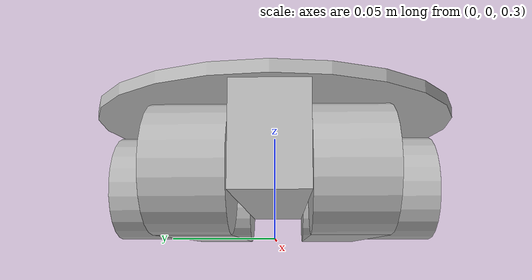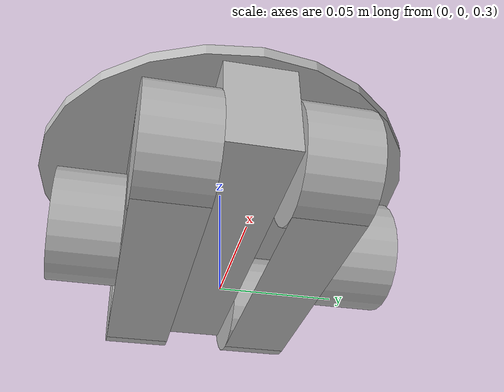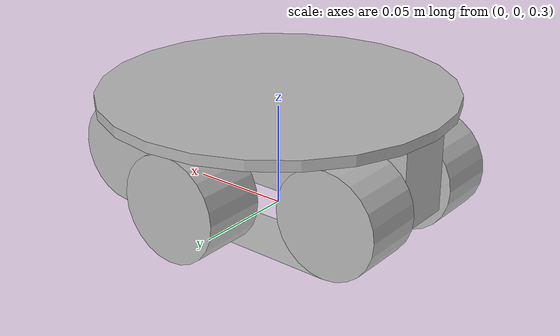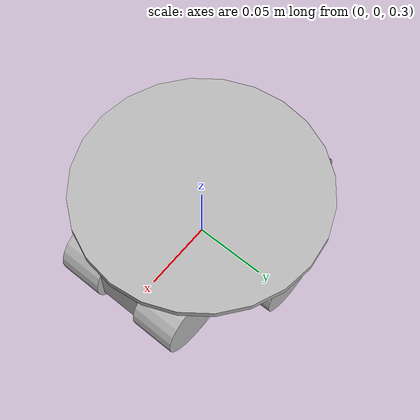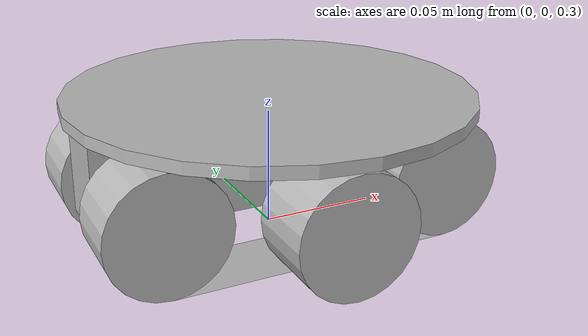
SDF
<?xml version='1.0'?>
<sdf version='1.6'>
		<model name="marXbotBase">
			<self_collide>true</self_collide>
			<pose>0.0 0.0 0.3 0.0 0.0 0.0</pose>
			<!-- Start of parts of the pmodel marXbotBase -->
				<!-- Start of declarations for part "marXbotBase::LTreel" -->
					<!-- Start of parts of part "marXbotBase::LTreel" -->
					<!-- End of parts of part "marXbotBase::LTreel" -->

					<!-- Start of links of part "marXbotBase::LTreel" -->
					<!-- link full name is marXbotBase::LTreel::Wheel -->
					<link name="1-Wheel">
							<pose>0.0 0.059999998530114576 0.024997220650460422 -1.5709353129016326 -0.0 0.0</pose>
							<inertial>
								<pose>0.0 0.0 0.0 0.0 0.0 0.0</pose>
								<inertia>
									<ixx>1.0</ixx>
									<ixy>0.0</ixy>
									<ixz>0.0</ixz>
									<iyy>1.0</iyy>
									<iyz>0.0</iyz>
									<izz>1.0</izz>
								</inertia>
								<mass>1.0</mass>
							</inertial>
							<!-- body full name is marXbotBase::LTreel::Wheel::Wheel -->
							<collision name="1--Wheel">
								<laser_retro>0.0</laser_retro>
								<pose>0.0 0.0 0.0 0.0 0.0 0.0</pose>
								<geometry>
									<cylinder>
										<radius>0.025025001541152614</radius>
										<length>0.029999999329447746</length>
									</cylinder>
								</geometry>
								<surface>
									<bounce>
										<restitution_coefficient>0.0</restitution_coefficient>
										<threshold>100000.0</threshold>
									</bounce>
									<friction>
										<ode>
											<mu>1.0</mu>
											<mu2>1.0</mu2>
											<fdir1>0.0 0.0 0.0</fdir1>
											<slip1>0.0</slip1>
											<slip2>0.0</slip2>
										</ode>
										<torsional>
											<coefficient>1.0</coefficient>
											<surface_radius>0.0</surface_radius>
										</torsional>
									</friction>
								</surface>
							</collision>
							<visual name="1--Wheel">
								<laser_retro>0.0</laser_retro>
								<pose>0.0 0.0 0.0 0.0 0.0 0.0</pose>
								<geometry>
									<cylinder>
										<radius>0.025025001541152614</radius>
										<length>0.029999999329447746</length>
									</cylinder>
								</geometry>
								<surface>
									<bounce>
										<restitution_coefficient>0.0</restitution_coefficient>
										<threshold>100000.0</threshold>
									</bounce>
									<friction>
										<ode>
											<mu>1.0</mu>
											<mu2>1.0</mu2>
											<fdir1>0.0 0.0 0.0</fdir1>
											<slip1>0.0</slip1>
											<slip2>0.0</slip2>
										</ode>
										<torsional>
											<coefficient>1.0</coefficient>
											<surface_radius>0.0</surface_radius>
										</torsional>
									</friction>
								</surface>
							</visual>
					</link>
					<!-- link full name is marXbotBase::LTreel::Track -->
					<link name="2-Track">
							<pose>0.0 0.029999999329447746 0.02500000037252903 3.1414999961853027 0.0 0.0</pose>
							<inertial>
								<pose>0.0 0.0 0.0 0.0 0.0 0.0</pose>
								<inertia>
									<ixx>1.0</ixx>
									<ixy>0.0</ixy>
									<ixz>0.0</ixz>
									<iyy>1.0</iyy>
									<iyz>0.0</iyz>
									<izz>1.0</izz>
								</inertia>
								<mass>1.0</mass>
							</inertial>
							<!-- body full name is marXbotBase::LTreel::Track::Top -->
							<collision name="2--Top">
								<laser_retro>0.0</laser_retro>
								<pose>0.0 0.0 0.02500000037252903 0.0 0.0 0.0</pose>
								<geometry>
									<box>
										<size>0.12000000104308128 0.029999999329447746 0</size>
									</box>
								</geometry>
								<surface>
									<bounce>
										<restitution_coefficient>0.0</restitution_coefficient>
										<threshold>100000.0</threshold>
									</bounce>
									<friction>
										<ode>
											<mu>1.0</mu>
											<mu2>1.0</mu2>
											<fdir1>0.0 0.0 0.0</fdir1>
											<slip1>0.0</slip1>
											<slip2>0.0</slip2>
										</ode>
										<torsional>
											<coefficient>1.0</coefficient>
											<surface_radius>0.0</surface_radius>
										</torsional>
									</friction>
								</surface>
							</collision>
							<visual name="2--Top">
								<laser_retro>0.0</laser_retro>
								<pose>0.0 0.0 0.02500000037252903 0.0 0.0 0.0</pose>
								<geometry>
									<box>
										<size>0.12000000104308128 0.029999999329447746 0</size>
									</box>
								</geometry>
								<surface>
									<bounce>
										<restitution_coefficient>0.0</restitution_coefficient>
										<threshold>100000.0</threshold>
									</bounce>
									<friction>
										<ode>
											<mu>1.0</mu>
											<mu2>1.0</mu2>
											<fdir1>0.0 0.0 0.0</fdir1>
											<slip1>0.0</slip1>
											<slip2>0.0</slip2>
										</ode>
										<torsional>
											<coefficient>1.0</coefficient>
											<surface_radius>0.0</surface_radius>
										</torsional>
									</friction>
								</surface>
							</visual>
							<!-- body full name is marXbotBase::LTreel::Track::Bottom -->
							<collision name="3--Bottom">
								<laser_retro>0.0</laser_retro>
								<pose>0.0 0.0 -0.02500000037252903 0.0 0.0 0.0</pose>
								<geometry>
									<box>
										<size>0.12000000104308128 0.029999999329447746 0</size>
									</box>
								</geometry>
								<surface>
									<bounce>
										<restitution_coefficient>0.0</restitution_coefficient>
										<threshold>100000.0</threshold>
									</bounce>
									<friction>
										<ode>
											<mu>1.0</mu>
											<mu2>1.0</mu2>
											<fdir1>0.0 0.0 0.0</fdir1>
											<slip1>0.0</slip1>
											<slip2>0.0</slip2>
										</ode>
										<torsional>
											<coefficient>1.0</coefficient>
											<surface_radius>0.0</surface_radius>
										</torsional>
									</friction>
								</surface>
							</collision>
							<visual name="3--Bottom">
								<laser_retro>0.0</laser_retro>
								<pose>0.0 0.0 -0.02500000037252903 0.0 0.0 0.0</pose>
								<geometry>
									<box>
										<size>0.12000000104308128 0.029999999329447746 0</size>
									</box>
								</geometry>
								<surface>
									<bounce>
										<restitution_coefficient>0.0</restitution_coefficient>
										<threshold>100000.0</threshold>
									</bounce>
									<friction>
										<ode>
											<mu>1.0</mu>
											<mu2>1.0</mu2>
											<fdir1>0.0 0.0 0.0</fdir1>
											<slip1>0.0</slip1>
											<slip2>0.0</slip2>
										</ode>
										<torsional>
											<coefficient>1.0</coefficient>
											<surface_radius>0.0</surface_radius>
										</torsional>
									</friction>
								</surface>
							</visual>
							<!-- body full name is marXbotBase::LTreel::Track::FrontWheel -->
							<collision name="4--FrontWheel">
								<laser_retro>0.0</laser_retro>
								<pose>-0.06000000052154064 0.0 0.0 1.5707499980926514 0.0 0.0</pose>
								<geometry>
									<cylinder>
										<radius>0.02500000037252903</radius>
										<length>0.029999999329447746</length>
									</cylinder>
								</geometry>
								<surface>
									<bounce>
										<restitution_coefficient>0.0</restitution_coefficient>
										<threshold>100000.0</threshold>
									</bounce>
									<friction>
										<ode>
											<mu>1.0</mu>
											<mu2>1.0</mu2>
											<fdir1>0.0 0.0 0.0</fdir1>
											<slip1>0.0</slip1>
											<slip2>0.0</slip2>
										</ode>
										<torsional>
											<coefficient>1.0</coefficient>
											<surface_radius>0.0</surface_radius>
										</torsional>
									</friction>
								</surface>
							</collision>
							<visual name="4--FrontWheel">
								<laser_retro>0.0</laser_retro>
								<pose>-0.06000000052154064 0.0 0.0 1.5707499980926514 0.0 0.0</pose>
								<geometry>
									<cylinder>
										<radius>0.02500000037252903</radius>
										<length>0.029999999329447746</length>
									</cylinder>
								</geometry>
								<surface>
									<bounce>
										<restitution_coefficient>0.0</restitution_coefficient>
										<threshold>100000.0</threshold>
									</bounce>
									<friction>
										<ode>
											<mu>1.0</mu>
											<mu2>1.0</mu2>
											<fdir1>0.0 0.0 0.0</fdir1>
											<slip1>0.0</slip1>
											<slip2>0.0</slip2>
										</ode>
										<torsional>
											<coefficient>1.0</coefficient>
											<surface_radius>0.0</surface_radius>
										</torsional>
									</friction>
								</surface>
							</visual>
							<!-- body full name is marXbotBase::LTreel::Track::BackWheel -->
							<collision name="5--BackWheel">
								<laser_retro>0.0</laser_retro>
								<pose>0.06000000052154064 0.0 0.0 1.5707499980926514 0.0 0.0</pose>
								<geometry>
									<cylinder>
										<radius>0.02500000037252903</radius>
										<length>0.029999999329447746</length>
									</cylinder>
								</geometry>
								<surface>
									<bounce>
										<restitution_coefficient>0.0</restitution_coefficient>
										<threshold>100000.0</threshold>
									</bounce>
									<friction>
										<ode>
											<mu>1.0</mu>
											<mu2>1.0</mu2>
											<fdir1>0.0 0.0 0.0</fdir1>
											<slip1>0.0</slip1>
											<slip2>0.0</slip2>
										</ode>
										<torsional>
											<coefficient>1.0</coefficient>
											<surface_radius>0.0</surface_radius>
										</torsional>
									</friction>
								</surface>
							</collision>
							<visual name="5--BackWheel">
								<laser_retro>0.0</laser_retro>
								<pose>0.06000000052154064 0.0 0.0 1.5707499980926514 0.0 0.0</pose>
								<geometry>
									<cylinder>
										<radius>0.02500000037252903</radius>
										<length>0.029999999329447746</length>
									</cylinder>
								</geometry>
								<surface>
									<bounce>
										<restitution_coefficient>0.0</restitution_coefficient>
										<threshold>100000.0</threshold>
									</bounce>
									<friction>
										<ode>
											<mu>1.0</mu>
											<mu2>1.0</mu2>
											<fdir1>0.0 0.0 0.0</fdir1>
											<slip1>0.0</slip1>
											<slip2>0.0</slip2>
										</ode>
										<torsional>
											<coefficient>1.0</coefficient>
											<surface_radius>0.0</surface_radius>
										</torsional>
									</friction>
								</surface>
							</visual>
					</link>
					<!-- End of links of part "marXbotBase::LTreel" -->

					<!-- Start of joints of part "marXbotBase::LTreel" -->
					<!-- End of joints of part "marXbotBase::LTreel" -->

					<!-- Start of fixed connections of part "marXbotBase::LTreel" -->

					<!-- End of fixed connections of part "marXbotBase::LTreel" -->
				<!-- End of declarations for part "marXbotBase::LTreel" -->
				<!-- Start of declarations for part "marXbotBase::RTreel" -->
					<!-- Start of parts of part "marXbotBase::RTreel" -->
					<!-- End of parts of part "marXbotBase::RTreel" -->

					<!-- Start of links of part "marXbotBase::RTreel" -->
					<!-- link full name is marXbotBase::RTreel::Wheel -->
					<link name="3-Wheel">
							<pose>0.0 -0.05999999865889549 0.02500000037252903 1.5707499980926514 -0.0 0.0</pose>
							<inertial>
								<pose>0.0 0.0 0.0 0.0 0.0 0.0</pose>
								<inertia>
									<ixx>1.0</ixx>
									<ixy>0.0</ixy>
									<ixz>0.0</ixz>
									<iyy>1.0</iyy>
									<iyz>0.0</iyz>
									<izz>1.0</izz>
								</inertia>
								<mass>1.0</mass>
							</inertial>
							<!-- body full name is marXbotBase::RTreel::Wheel::Wheel -->
							<collision name="6--Wheel">
								<laser_retro>0.0</laser_retro>
								<pose>0.0 0.0 0.0 0.0 0.0 0.0</pose>
								<geometry>
									<cylinder>
										<radius>0.025025001541152614</radius>
										<length>0.029999999329447746</length>
									</cylinder>
								</geometry>
								<surface>
									<bounce>
										<restitution_coefficient>0.0</restitution_coefficient>
										<threshold>100000.0</threshold>
									</bounce>
									<friction>
										<ode>
											<mu>1.0</mu>
											<mu2>1.0</mu2>
											<fdir1>0.0 0.0 0.0</fdir1>
											<slip1>0.0</slip1>
											<slip2>0.0</slip2>
										</ode>
										<torsional>
											<coefficient>1.0</coefficient>
											<surface_radius>0.0</surface_radius>
										</torsional>
									</friction>
								</surface>
							</collision>
							<visual name="6--Wheel">
								<laser_retro>0.0</laser_retro>
								<pose>0.0 0.0 0.0 0.0 0.0 0.0</pose>
								<geometry>
									<cylinder>
										<radius>0.025025001541152614</radius>
										<length>0.029999999329447746</length>
									</cylinder>
								</geometry>
								<surface>
									<bounce>
										<restitution_coefficient>0.0</restitution_coefficient>
										<threshold>100000.0</threshold>
									</bounce>
									<friction>
										<ode>
											<mu>1.0</mu>
											<mu2>1.0</mu2>
											<fdir1>0.0 0.0 0.0</fdir1>
											<slip1>0.0</slip1>
											<slip2>0.0</slip2>
										</ode>
										<torsional>
											<coefficient>1.0</coefficient>
											<surface_radius>0.0</surface_radius>
										</torsional>
									</friction>
								</surface>
							</visual>
					</link>
					<!-- link full name is marXbotBase::RTreel::Track -->
					<link name="4-Track">
							<pose>0.0 -0.029999999329447746 0.02500000037252903 0.0 0.0 0.0</pose>
							<inertial>
								<pose>0.0 0.0 0.0 0.0 0.0 0.0</pose>
								<inertia>
									<ixx>1.0</ixx>
									<ixy>0.0</ixy>
									<ixz>0.0</ixz>
									<iyy>1.0</iyy>
									<iyz>0.0</iyz>
									<izz>1.0</izz>
								</inertia>
								<mass>1.0</mass>
							</inertial>
							<!-- body full name is marXbotBase::RTreel::Track::Top -->
							<collision name="7--Top">
								<laser_retro>0.0</laser_retro>
								<pose>0.0 0.0 0.02500000037252903 0.0 0.0 0.0</pose>
								<geometry>
									<box>
										<size>0.12000000104308128 0.029999999329447746 0</size>
									</box>
								</geometry>
								<surface>
									<bounce>
										<restitution_coefficient>0.0</restitution_coefficient>
										<threshold>100000.0</threshold>
									</bounce>
									<friction>
										<ode>
											<mu>1.0</mu>
											<mu2>1.0</mu2>
											<fdir1>0.0 0.0 0.0</fdir1>
											<slip1>0.0</slip1>
											<slip2>0.0</slip2>
										</ode>
										<torsional>
											<coefficient>1.0</coefficient>
											<surface_radius>0.0</surface_radius>
										</torsional>
									</friction>
								</surface>
							</collision>
							<visual name="7--Top">
								<laser_retro>0.0</laser_retro>
								<pose>0.0 0.0 0.02500000037252903 0.0 0.0 0.0</pose>
								<geometry>
									<box>
										<size>0.12000000104308128 0.029999999329447746 0</size>
									</box>
								</geometry>
								<surface>
									<bounce>
										<restitution_coefficient>0.0</restitution_coefficient>
										<threshold>100000.0</threshold>
									</bounce>
									<friction>
										<ode>
											<mu>1.0</mu>
											<mu2>1.0</mu2>
											<fdir1>0.0 0.0 0.0</fdir1>
											<slip1>0.0</slip1>
											<slip2>0.0</slip2>
										</ode>
										<torsional>
											<coefficient>1.0</coefficient>
											<surface_radius>0.0</surface_radius>
										</torsional>
									</friction>
								</surface>
							</visual>
							<!-- body full name is marXbotBase::RTreel::Track::Bottom -->
							<collision name="8--Bottom">
								<laser_retro>0.0</laser_retro>
								<pose>0.0 0.0 -0.02500000037252903 0.0 0.0 0.0</pose>
								<geometry>
									<box>
										<size>0.12000000104308128 0.029999999329447746 0</size>
									</box>
								</geometry>
								<surface>
									<bounce>
										<restitution_coefficient>0.0</restitution_coefficient>
										<threshold>100000.0</threshold>
									</bounce>
									<friction>
										<ode>
											<mu>1.0</mu>
											<mu2>1.0</mu2>
											<fdir1>0.0 0.0 0.0</fdir1>
											<slip1>0.0</slip1>
											<slip2>0.0</slip2>
										</ode>
										<torsional>
											<coefficient>1.0</coefficient>
											<surface_radius>0.0</surface_radius>
										</torsional>
									</friction>
								</surface>
							</collision>
							<visual name="8--Bottom">
								<laser_retro>0.0</laser_retro>
								<pose>0.0 0.0 -0.02500000037252903 0.0 0.0 0.0</pose>
								<geometry>
									<box>
										<size>0.12000000104308128 0.029999999329447746 0</size>
									</box>
								</geometry>
								<surface>
									<bounce>
										<restitution_coefficient>0.0</restitution_coefficient>
										<threshold>100000.0</threshold>
									</bounce>
									<friction>
										<ode>
											<mu>1.0</mu>
											<mu2>1.0</mu2>
											<fdir1>0.0 0.0 0.0</fdir1>
											<slip1>0.0</slip1>
											<slip2>0.0</slip2>
										</ode>
										<torsional>
											<coefficient>1.0</coefficient>
											<surface_radius>0.0</surface_radius>
										</torsional>
									</friction>
								</surface>
							</visual>
							<!-- body full name is marXbotBase::RTreel::Track::FrontWheel -->
							<collision name="9--FrontWheel">
								<laser_retro>0.0</laser_retro>
								<pose>-0.06000000052154064 0.0 0.0 1.5707499980926514 0.0 0.0</pose>
								<geometry>
									<cylinder>
										<radius>0.02500000037252903</radius>
										<length>0.029999999329447746</length>
									</cylinder>
								</geometry>
								<surface>
									<bounce>
										<restitution_coefficient>0.0</restitution_coefficient>
										<threshold>100000.0</threshold>
									</bounce>
									<friction>
										<ode>
											<mu>1.0</mu>
											<mu2>1.0</mu2>
											<fdir1>0.0 0.0 0.0</fdir1>
											<slip1>0.0</slip1>
											<slip2>0.0</slip2>
										</ode>
										<torsional>
											<coefficient>1.0</coefficient>
											<surface_radius>0.0</surface_radius>
										</torsional>
									</friction>
								</surface>
							</collision>
							<visual name="9--FrontWheel">
								<laser_retro>0.0</laser_retro>
								<pose>-0.06000000052154064 0.0 0.0 1.5707499980926514 0.0 0.0</pose>
								<geometry>
									<cylinder>
										<radius>0.02500000037252903</radius>
										<length>0.029999999329447746</length>
									</cylinder>
								</geometry>
								<surface>
									<bounce>
										<restitution_coefficient>0.0</restitution_coefficient>
										<threshold>100000.0</threshold>
									</bounce>
									<friction>
										<ode>
											<mu>1.0</mu>
											<mu2>1.0</mu2>
											<fdir1>0.0 0.0 0.0</fdir1>
											<slip1>0.0</slip1>
											<slip2>0.0</slip2>
										</ode>
										<torsional>
											<coefficient>1.0</coefficient>
											<surface_radius>0.0</surface_radius>
										</torsional>
									</friction>
								</surface>
							</visual>
							<!-- body full name is marXbotBase::RTreel::Track::BackWheel -->
							<collision name="10--BackWheel">
								<laser_retro>0.0</laser_retro>
								<pose>0.06000000052154064 0.0 0.0 1.5707499980926514 0.0 0.0</pose>
								<geometry>
									<cylinder>
										<radius>0.02500000037252903</radius>
										<length>0.029999999329447746</length>
									</cylinder>
								</geometry>
								<surface>
									<bounce>
										<restitution_coefficient>0.0</restitution_coefficient>
										<threshold>100000.0</threshold>
									</bounce>
									<friction>
										<ode>
											<mu>1.0</mu>
											<mu2>1.0</mu2>
											<fdir1>0.0 0.0 0.0</fdir1>
											<slip1>0.0</slip1>
											<slip2>0.0</slip2>
										</ode>
										<torsional>
											<coefficient>1.0</coefficient>
											<surface_radius>0.0</surface_radius>
										</torsional>
									</friction>
								</surface>
							</collision>
							<visual name="10--BackWheel">
								<laser_retro>0.0</laser_retro>
								<pose>0.06000000052154064 0.0 0.0 1.5707499980926514 0.0 0.0</pose>
								<geometry>
									<cylinder>
										<radius>0.02500000037252903</radius>
										<length>0.029999999329447746</length>
									</cylinder>
								</geometry>
								<surface>
									<bounce>
										<restitution_coefficient>0.0</restitution_coefficient>
										<threshold>100000.0</threshold>
									</bounce>
									<friction>
										<ode>
											<mu>1.0</mu>
											<mu2>1.0</mu2>
											<fdir1>0.0 0.0 0.0</fdir1>
											<slip1>0.0</slip1>
											<slip2>0.0</slip2>
										</ode>
										<torsional>
											<coefficient>1.0</coefficient>
											<surface_radius>0.0</surface_radius>
										</torsional>
									</friction>
								</surface>
							</visual>
					</link>
					<!-- End of links of part "marXbotBase::RTreel" -->

					<!-- Start of joints of part "marXbotBase::RTreel" -->
					<!-- End of joints of part "marXbotBase::RTreel" -->

					<!-- Start of fixed connections of part "marXbotBase::RTreel" -->

					<!-- End of fixed connections of part "marXbotBase::RTreel" -->
				<!-- End of declarations for part "marXbotBase::RTreel" -->
			<!-- End of parts of the pmodel marXbotBase -->

			<!-- Start of links of the pmodel marXbotBase -->
			<!-- link full name is marXbotBase::Core -->
			<link name="5-Core">
					<pose>0.0 0.0 0.057500001043081284 0.0 0.0 0.0</pose>
					<inertial>
						<pose>0.0 0.0 0.0 0.0 0.0 0.0</pose>
						<inertia>
							<ixx>1.0</ixx>
							<ixy>0.0</ixy>
							<ixz>0.0</ixz>
							<iyy>1.0</iyy>
							<iyz>0.0</iyz>
							<izz>1.0</izz>
						</inertia>
						<mass>1.0</mass>
					</inertial>
					<!-- body full name is marXbotBase::Core::Spine -->
					<collision name="11--Spine">
						<laser_retro>0.0</laser_retro>
						<pose>0.0 0.0 -0.02250000089406967 0.0 0.0 1.5707499980926514</pose>
						<geometry>
							<box>
								<size>0.029999999329447746 0.1599999964237213 0.03999999910593033</size>
							</box>
						</geometry>
						<surface>
							<bounce>
								<restitution_coefficient>0.0</restitution_coefficient>
								<threshold>100000.0</threshold>
							</bounce>
							<friction>
								<ode>
									<mu>1.0</mu>
									<mu2>1.0</mu2>
									<fdir1>0.0 0.0 0.0</fdir1>
									<slip1>0.0</slip1>
									<slip2>0.0</slip2>
								</ode>
								<torsional>
									<coefficient>1.0</coefficient>
									<surface_radius>0.0</surface_radius>
								</torsional>
							</friction>
						</surface>
					</collision>
					<visual name="11--Spine">
						<laser_retro>0.0</laser_retro>
						<pose>0.0 0.0 -0.02250000089406967 0.0 0.0 1.5707499980926514</pose>
						<geometry>
							<box>
								<size>0.029999999329447746 0.1599999964237213 0.03999999910593033</size>
							</box>
						</geometry>
						<surface>
							<bounce>
								<restitution_coefficient>0.0</restitution_coefficient>
								<threshold>100000.0</threshold>
							</bounce>
							<friction>
								<ode>
									<mu>1.0</mu>
									<mu2>1.0</mu2>
									<fdir1>0.0 0.0 0.0</fdir1>
									<slip1>0.0</slip1>
									<slip2>0.0</slip2>
								</ode>
								<torsional>
									<coefficient>1.0</coefficient>
									<surface_radius>0.0</surface_radius>
								</torsional>
							</friction>
						</surface>
					</visual>
					<!-- body full name is marXbotBase::Core::Frame -->
					<collision name="12--Frame">
						<laser_retro>0.0</laser_retro>
						<pose>0.0 0.0 0.0 0.0 0.0 0.0</pose>
						<geometry>
							<cylinder>
								<radius>0.08500000089406967</radius>
								<length>0.004999999888241291</length>
							</cylinder>
						</geometry>
						<surface>
							<bounce>
								<restitution_coefficient>0.0</restitution_coefficient>
								<threshold>100000.0</threshold>
							</bounce>
							<friction>
								<ode>
									<mu>1.0</mu>
									<mu2>1.0</mu2>
									<fdir1>0.0 0.0 0.0</fdir1>
									<slip1>0.0</slip1>
									<slip2>0.0</slip2>
								</ode>
								<torsional>
									<coefficient>1.0</coefficient>
									<surface_radius>0.0</surface_radius>
								</torsional>
							</friction>
						</surface>
					</collision>
					<visual name="12--Frame">
						<laser_retro>0.0</laser_retro>
						<pose>0.0 0.0 0.0 0.0 0.0 0.0</pose>
						<geometry>
							<cylinder>
								<radius>0.08500000089406967</radius>
								<length>0.004999999888241291</length>
							</cylinder>
						</geometry>
						<surface>
							<bounce>
								<restitution_coefficient>0.0</restitution_coefficient>
								<threshold>100000.0</threshold>
							</bounce>
							<friction>
								<ode>
									<mu>1.0</mu>
									<mu2>1.0</mu2>
									<fdir1>0.0 0.0 0.0</fdir1>
									<slip1>0.0</slip1>
									<slip2>0.0</slip2>
								</ode>
								<torsional>
									<coefficient>1.0</coefficient>
									<surface_radius>0.0</surface_radius>
								</torsional>
							</friction>
						</surface>
					</visual>
					<!-- WARNING: The SDF generator relies on annotations of the sensor Proximity::0 to specify aspects of the
					sensor that are accounted for in the equations. -->
					<!-- sensor simple name is Proximity -->
					<sensor name="Proximity::0" type="ray">
						<pose>0.0 0.0 0.0 -0.0 1.57079632679 0.0</pose>
						<visualize>true</visualize>
						<always_on>true</always_on>
						<update_rate>1</update_rate>
						<ray>
							<scan>
								<horizontal>
									<samples>1</samples>
									<resolution>1.0</resolution>
								</horizontal>
								<vertical>
									<samples>1</samples>
									<resolution>1.0</resolution>
								</vertical>
							</scan>
							<range>
								<min>0.0</min>
								<max>0.10000000149011612</max>
							</range>
						</ray>
					</sensor>
					<!-- WARNING: The SDF generator relies on annotations of the sensor Proximity::1 to specify aspects of the
					sensor that are accounted for in the equations. -->
					<!-- sensor simple name is Proximity -->
					<sensor name="Proximity::1" type="ray">
						<pose>0.0 0.0 0.0 -0.2617916663487752 1.57079632679 0.0</pose>
						<visualize>true</visualize>
						<always_on>true</always_on>
						<update_rate>1</update_rate>
						<ray>
							<scan>
								<horizontal>
									<samples>1</samples>
									<resolution>1.0</resolution>
								</horizontal>
								<vertical>
									<samples>1</samples>
									<resolution>1.0</resolution>
								</vertical>
							</scan>
							<range>
								<min>0.0</min>
								<max>0.10000000149011612</max>
							</range>
						</ray>
					</sensor>
					<!-- WARNING: The SDF generator relies on annotations of the sensor Proximity::2 to specify aspects of the
					sensor that are accounted for in the equations. -->
					<!-- sensor simple name is Proximity -->
					<sensor name="Proximity::2" type="ray">
						<pose>0.0 0.0 0.0 -0.5235833326975504 1.57079632679 0.0</pose>
						<visualize>true</visualize>
						<always_on>true</always_on>
						<update_rate>1</update_rate>
						<ray>
							<scan>
								<horizontal>
									<samples>1</samples>
									<resolution>1.0</resolution>
								</horizontal>
								<vertical>
									<samples>1</samples>
									<resolution>1.0</resolution>
								</vertical>
							</scan>
							<range>
								<min>0.0</min>
								<max>0.10000000149011612</max>
							</range>
						</ray>
					</sensor>
					<!-- WARNING: The SDF generator relies on annotations of the sensor Proximity::3 to specify aspects of the
					sensor that are accounted for in the equations. -->
					<!-- sensor simple name is Proximity -->
					<sensor name="Proximity::3" type="ray">
						<pose>0.0 0.0 0.0 -0.7853749990463258 1.57079632679 0.0</pose>
						<visualize>true</visualize>
						<always_on>true</always_on>
						<update_rate>1</update_rate>
						<ray>
							<scan>
								<horizontal>
									<samples>1</samples>
									<resolution>1.0</resolution>
								</horizontal>
								<vertical>
									<samples>1</samples>
									<resolution>1.0</resolution>
								</vertical>
							</scan>
							<range>
								<min>0.0</min>
								<max>0.10000000149011612</max>
							</range>
						</ray>
					</sensor>
					<!-- WARNING: The SDF generator relies on annotations of the sensor Proximity::4 to specify aspects of the
					sensor that are accounted for in the equations. -->
					<!-- sensor simple name is Proximity -->
					<sensor name="Proximity::4" type="ray">
						<pose>0.0 0.0 0.0 -1.0471666653951008 1.57079632679 0.0</pose>
						<visualize>true</visualize>
						<always_on>true</always_on>
						<update_rate>1</update_rate>
						<ray>
							<scan>
								<horizontal>
									<samples>1</samples>
									<resolution>1.0</resolution>
								</horizontal>
								<vertical>
									<samples>1</samples>
									<resolution>1.0</resolution>
								</vertical>
							</scan>
							<range>
								<min>0.0</min>
								<max>0.10000000149011612</max>
							</range>
						</ray>
					</sensor>
					<!-- WARNING: The SDF generator relies on annotations of the sensor Proximity::5 to specify aspects of the
					sensor that are accounted for in the equations. -->
					<!-- sensor simple name is Proximity -->
					<sensor name="Proximity::5" type="ray">
						<pose>0.0 0.0 0.0 -1.3089583317438762 1.57079632679 0.0</pose>
						<visualize>true</visualize>
						<always_on>true</always_on>
						<update_rate>1</update_rate>
						<ray>
							<scan>
								<horizontal>
									<samples>1</samples>
									<resolution>1.0</resolution>
								</horizontal>
								<vertical>
									<samples>1</samples>
									<resolution>1.0</resolution>
								</vertical>
							</scan>
							<range>
								<min>0.0</min>
								<max>0.10000000149011612</max>
							</range>
						</ray>
					</sensor>
					<!-- WARNING: The SDF generator relies on annotations of the sensor Proximity::6 to specify aspects of the
					sensor that are accounted for in the equations. -->
					<!-- sensor simple name is Proximity -->
					<sensor name="Proximity::6" type="ray">
						<pose>0.0 0.0 0.0 -1.5707499980926514 1.57079632679 0.0</pose>
						<visualize>true</visualize>
						<always_on>true</always_on>
						<update_rate>1</update_rate>
						<ray>
							<scan>
								<horizontal>
									<samples>1</samples>
									<resolution>1.0</resolution>
								</horizontal>
								<vertical>
									<samples>1</samples>
									<resolution>1.0</resolution>
								</vertical>
							</scan>
							<range>
								<min>0.0</min>
								<max>0.10000000149011612</max>
							</range>
						</ray>
					</sensor>
					<!-- WARNING: The SDF generator relies on annotations of the sensor Proximity::7 to specify aspects of the
					sensor that are accounted for in the equations. -->
					<!-- sensor simple name is Proximity -->
					<sensor name="Proximity::7" type="ray">
						<pose>0.0 0.0 0.0 -1.8325416644414265 1.57079632679 0.0</pose>
						<visualize>true</visualize>
						<always_on>true</always_on>
						<update_rate>1</update_rate>
						<ray>
							<scan>
								<horizontal>
									<samples>1</samples>
									<resolution>1.0</resolution>
								</horizontal>
								<vertical>
									<samples>1</samples>
									<resolution>1.0</resolution>
								</vertical>
							</scan>
							<range>
								<min>0.0</min>
								<max>0.10000000149011612</max>
							</range>
						</ray>
					</sensor>
					<!-- WARNING: The SDF generator relies on annotations of the sensor Proximity::8 to specify aspects of the
					sensor that are accounted for in the equations. -->
					<!-- sensor simple name is Proximity -->
					<sensor name="Proximity::8" type="ray">
						<pose>0.0 0.0 0.0 -2.094333330790202 1.57079632679 0.0</pose>
						<visualize>true</visualize>
						<always_on>true</always_on>
						<update_rate>1</update_rate>
						<ray>
							<scan>
								<horizontal>
									<samples>1</samples>
									<resolution>1.0</resolution>
								</horizontal>
								<vertical>
									<samples>1</samples>
									<resolution>1.0</resolution>
								</vertical>
							</scan>
							<range>
								<min>0.0</min>
								<max>0.10000000149011612</max>
							</range>
						</ray>
					</sensor>
					<!-- WARNING: The SDF generator relies on annotations of the sensor Proximity::9 to specify aspects of the
					sensor that are accounted for in the equations. -->
					<!-- sensor simple name is Proximity -->
					<sensor name="Proximity::9" type="ray">
						<pose>0.0 0.0 0.0 -2.356124997138977 1.57079632679 0.0</pose>
						<visualize>true</visualize>
						<always_on>true</always_on>
						<update_rate>1</update_rate>
						<ray>
							<scan>
								<horizontal>
									<samples>1</samples>
									<resolution>1.0</resolution>
								</horizontal>
								<vertical>
									<samples>1</samples>
									<resolution>1.0</resolution>
								</vertical>
							</scan>
							<range>
								<min>0.0</min>
								<max>0.10000000149011612</max>
							</range>
						</ray>
					</sensor>
					<!-- WARNING: The SDF generator relies on annotations of the sensor Proximity::10 to specify aspects of the
					sensor that are accounted for in the equations. -->
					<!-- sensor simple name is Proximity -->
					<sensor name="Proximity::10" type="ray">
						<pose>0.0 0.0 0.0 -2.6179166634877524 1.57079632679 0.0</pose>
						<visualize>true</visualize>
						<always_on>true</always_on>
						<update_rate>1</update_rate>
						<ray>
							<scan>
								<horizontal>
									<samples>1</samples>
									<resolution>1.0</resolution>
								</horizontal>
								<vertical>
									<samples>1</samples>
									<resolution>1.0</resolution>
								</vertical>
							</scan>
							<range>
								<min>0.0</min>
								<max>0.10000000149011612</max>
							</range>
						</ray>
					</sensor>
					<!-- WARNING: The SDF generator relies on annotations of the sensor Proximity::11 to specify aspects of the
					sensor that are accounted for in the equations. -->
					<!-- sensor simple name is Proximity -->
					<sensor name="Proximity::11" type="ray">
						<pose>0.0 0.0 0.0 -2.8797083298365274 1.57079632679 0.0</pose>
						<visualize>true</visualize>
						<always_on>true</always_on>
						<update_rate>1</update_rate>
						<ray>
							<scan>
								<horizontal>
									<samples>1</samples>
									<resolution>1.0</resolution>
								</horizontal>
								<vertical>
									<samples>1</samples>
									<resolution>1.0</resolution>
								</vertical>
							</scan>
							<range>
								<min>0.0</min>
								<max>0.10000000149011612</max>
							</range>
						</ray>
					</sensor>
					<!-- WARNING: The SDF generator relies on annotations of the sensor Proximity::12 to specify aspects of the
					sensor that are accounted for in the equations. -->
					<!-- sensor simple name is Proximity -->
					<sensor name="Proximity::12" type="ray">
						<pose>0.0 0.0 0.0 -3.1414999961853027 1.57079632679 0.0</pose>
						<visualize>true</visualize>
						<always_on>true</always_on>
						<update_rate>1</update_rate>
						<ray>
							<scan>
								<horizontal>
									<samples>1</samples>
									<resolution>1.0</resolution>
								</horizontal>
								<vertical>
									<samples>1</samples>
									<resolution>1.0</resolution>
								</vertical>
							</scan>
							<range>
								<min>0.0</min>
								<max>0.10000000149011612</max>
							</range>
						</ray>
					</sensor>
					<!-- WARNING: The SDF generator relies on annotations of the sensor Proximity::13 to specify aspects of the
					sensor that are accounted for in the equations. -->
					<!-- sensor simple name is Proximity -->
					<sensor name="Proximity::13" type="ray">
						<pose>0.0 0.0 0.0 2.8798936446455086 1.57079632679 0.0</pose>
						<visualize>true</visualize>
						<always_on>true</always_on>
						<update_rate>1</update_rate>
						<ray>
							<scan>
								<horizontal>
									<samples>1</samples>
									<resolution>1.0</resolution>
								</horizontal>
								<vertical>
									<samples>1</samples>
									<resolution>1.0</resolution>
								</vertical>
							</scan>
							<range>
								<min>0.0</min>
								<max>0.10000000149011612</max>
							</range>
						</ray>
					</sensor>
					<!-- WARNING: The SDF generator relies on annotations of the sensor Proximity::14 to specify aspects of the
					sensor that are accounted for in the equations. -->
					<!-- sensor simple name is Proximity -->
					<sensor name="Proximity::14" type="ray">
						<pose>0.0 0.0 0.0 2.6181019782967336 1.57079632679 0.0</pose>
						<visualize>true</visualize>
						<always_on>true</always_on>
						<update_rate>1</update_rate>
						<ray>
							<scan>
								<horizontal>
									<samples>1</samples>
									<resolution>1.0</resolution>
								</horizontal>
								<vertical>
									<samples>1</samples>
									<resolution>1.0</resolution>
								</vertical>
							</scan>
							<range>
								<min>0.0</min>
								<max>0.10000000149011612</max>
							</range>
						</ray>
					</sensor>
					<!-- WARNING: The SDF generator relies on annotations of the sensor Proximity::15 to specify aspects of the
					sensor that are accounted for in the equations. -->
					<!-- sensor simple name is Proximity -->
					<sensor name="Proximity::15" type="ray">
						<pose>0.0 0.0 0.0 2.356310311947958 1.57079632679 0.0</pose>
						<visualize>true</visualize>
						<always_on>true</always_on>
						<update_rate>1</update_rate>
						<ray>
							<scan>
								<horizontal>
									<samples>1</samples>
									<resolution>1.0</resolution>
								</horizontal>
								<vertical>
									<samples>1</samples>
									<resolution>1.0</resolution>
								</vertical>
							</scan>
							<range>
								<min>0.0</min>
								<max>0.10000000149011612</max>
							</range>
						</ray>
					</sensor>
					<!-- WARNING: The SDF generator relies on annotations of the sensor Proximity::16 to specify aspects of the
					sensor that are accounted for in the equations. -->
					<!-- sensor simple name is Proximity -->
					<sensor name="Proximity::16" type="ray">
						<pose>0.0 0.0 0.0 2.0945186455991833 1.57079632679 0.0</pose>
						<visualize>true</visualize>
						<always_on>true</always_on>
						<update_rate>1</update_rate>
						<ray>
							<scan>
								<horizontal>
									<samples>1</samples>
									<resolution>1.0</resolution>
								</horizontal>
								<vertical>
									<samples>1</samples>
									<resolution>1.0</resolution>
								</vertical>
							</scan>
							<range>
								<min>0.0</min>
								<max>0.10000000149011612</max>
							</range>
						</ray>
					</sensor>
					<!-- WARNING: The SDF generator relies on annotations of the sensor Proximity::17 to specify aspects of the
					sensor that are accounted for in the equations. -->
					<!-- sensor simple name is Proximity -->
					<sensor name="Proximity::17" type="ray">
						<pose>0.0 0.0 0.0 1.8327269792504075 1.57079632679 0.0</pose>
						<visualize>true</visualize>
						<always_on>true</always_on>
						<update_rate>1</update_rate>
						<ray>
							<scan>
								<horizontal>
									<samples>1</samples>
									<resolution>1.0</resolution>
								</horizontal>
								<vertical>
									<samples>1</samples>
									<resolution>1.0</resolution>
								</vertical>
							</scan>
							<range>
								<min>0.0</min>
								<max>0.10000000149011612</max>
							</range>
						</ray>
					</sensor>
					<!-- WARNING: The SDF generator relies on annotations of the sensor Proximity::18 to specify aspects of the
					sensor that are accounted for in the equations. -->
					<!-- sensor simple name is Proximity -->
					<sensor name="Proximity::18" type="ray">
						<pose>0.0 0.0 0.0 1.5709353129016326 1.57079632679 0.0</pose>
						<visualize>true</visualize>
						<always_on>true</always_on>
						<update_rate>1</update_rate>
						<ray>
							<scan>
								<horizontal>
									<samples>1</samples>
									<resolution>1.0</resolution>
								</horizontal>
								<vertical>
									<samples>1</samples>
									<resolution>1.0</resolution>
								</vertical>
							</scan>
							<range>
								<min>0.0</min>
								<max>0.10000000149011612</max>
							</range>
						</ray>
					</sensor>
					<!-- WARNING: The SDF generator relies on annotations of the sensor Proximity::19 to specify aspects of the
					sensor that are accounted for in the equations. -->
					<!-- sensor simple name is Proximity -->
					<sensor name="Proximity::19" type="ray">
						<pose>0.0 0.0 0.0 1.3091436465528574 1.57079632679 0.0</pose>
						<visualize>true</visualize>
						<always_on>true</always_on>
						<update_rate>1</update_rate>
						<ray>
							<scan>
								<horizontal>
									<samples>1</samples>
									<resolution>1.0</resolution>
								</horizontal>
								<vertical>
									<samples>1</samples>
									<resolution>1.0</resolution>
								</vertical>
							</scan>
							<range>
								<min>0.0</min>
								<max>0.10000000149011612</max>
							</range>
						</ray>
					</sensor>
					<!-- WARNING: The SDF generator relies on annotations of the sensor Proximity::20 to specify aspects of the
					sensor that are accounted for in the equations. -->
					<!-- sensor simple name is Proximity -->
					<sensor name="Proximity::20" type="ray">
						<pose>0.0 0.0 0.0 1.0473519802040816 1.57079632679 0.0</pose>
						<visualize>true</visualize>
						<always_on>true</always_on>
						<update_rate>1</update_rate>
						<ray>
							<scan>
								<horizontal>
									<samples>1</samples>
									<resolution>1.0</resolution>
								</horizontal>
								<vertical>
									<samples>1</samples>
									<resolution>1.0</resolution>
								</vertical>
							</scan>
							<range>
								<min>0.0</min>
								<max>0.10000000149011612</max>
							</range>
						</ray>
					</sensor>
					<!-- WARNING: The SDF generator relies on annotations of the sensor Proximity::21 to specify aspects of the
					sensor that are accounted for in the equations. -->
					<!-- sensor simple name is Proximity -->
					<sensor name="Proximity::21" type="ray">
						<pose>0.0 0.0 0.0 0.7855603138553067 1.57079632679 0.0</pose>
						<visualize>true</visualize>
						<always_on>true</always_on>
						<update_rate>1</update_rate>
						<ray>
							<scan>
								<horizontal>
									<samples>1</samples>
									<resolution>1.0</resolution>
								</horizontal>
								<vertical>
									<samples>1</samples>
									<resolution>1.0</resolution>
								</vertical>
							</scan>
							<range>
								<min>0.0</min>
								<max>0.10000000149011612</max>
							</range>
						</ray>
					</sensor>
					<!-- WARNING: The SDF generator relies on annotations of the sensor Proximity::22 to specify aspects of the
					sensor that are accounted for in the equations. -->
					<!-- sensor simple name is Proximity -->
					<sensor name="Proximity::22" type="ray">
						<pose>0.0 0.0 0.0 0.5237686475065317 1.57079632679 0.0</pose>
						<visualize>true</visualize>
						<always_on>true</always_on>
						<update_rate>1</update_rate>
						<ray>
							<scan>
								<horizontal>
									<samples>1</samples>
									<resolution>1.0</resolution>
								</horizontal>
								<vertical>
									<samples>1</samples>
									<resolution>1.0</resolution>
								</vertical>
							</scan>
							<range>
								<min>0.0</min>
								<max>0.10000000149011612</max>
							</range>
						</ray>
					</sensor>
					<!-- WARNING: The SDF generator relies on annotations of the sensor Proximity::23 to specify aspects of the
					sensor that are accounted for in the equations. -->
					<!-- sensor simple name is Proximity -->
					<sensor name="Proximity::23" type="ray">
						<pose>0.0 0.0 0.0 0.2619769811577559 1.57079632679 0.0</pose>
						<visualize>true</visualize>
						<always_on>true</always_on>
						<update_rate>1</update_rate>
						<ray>
							<scan>
								<horizontal>
									<samples>1</samples>
									<resolution>1.0</resolution>
								</horizontal>
								<vertical>
									<samples>1</samples>
									<resolution>1.0</resolution>
								</vertical>
							</scan>
							<range>
								<min>0.0</min>
								<max>0.10000000149011612</max>
							</range>
						</ray>
					</sensor>
			</link>
			<!-- End of links of the pmodel marXbotBase -->

			<!-- Start of joints of the pmodel marXbotBase -->
			<!-- Full name of joint: marXbotBase::Core::RHinge from marXbotBase::Core to marXbotBase::RTreel::Wheel-->
			<joint name="6-RHinge" type="revolute">
				<pose>0.0 1.391723680937984E-6 -0.02999999929716622 -1.5707499980926514 -0.0 0.0</pose>
				<parent>5-Core</parent>
				<child>3-Wheel</child>
				<!-- WARNING: The SDF generator relies on annotations of the joint 6-RHinge to specify in SDF aspects of the joint that are
					 accounted for in the equations. -->
				<axis>
					<initial_position>3.1414999961853027</initial_position>
					<xyz>0 -1 0</xyz>
					<dynamics>
						<damping>0.0</damping>
						<friction>0.0</friction>
						<spring_reference>0.0</spring_reference>
						<spring_stiffness>0.0</spring_stiffness>
					</dynamics>
					<limit>
						<lower>-1.0000000272564224E16</lower>
						<upper>1.0000000272564224E16</upper>
						<effort>-1.0</effort>
						<velocity>-1.0</velocity>
						<stiffness>1.0E8</stiffness>
						<dissipation>1.0</dissipation>
					</limit>
				</axis>
			</joint>
			<!-- Full name of joint: marXbotBase::Core::LHinge from marXbotBase::Core to marXbotBase::LTreel::Wheel-->
			<joint name="7-LHinge" type="revolute">
				<pose>0.0 1.3879983906672777E-6 -0.029999999297511393 1.5709353129016326 -0.0 0.0</pose>
				<parent>5-Core</parent>
				<child>1-Wheel</child>
				<!-- WARNING: The SDF generator relies on annotations of the joint 7-LHinge to specify in SDF aspects of the joint that are
					 accounted for in the equations. -->
				<axis>
					<initial_position>3.1414999961853027</initial_position>
					<xyz>0 1 0</xyz>
					<dynamics>
						<damping>0.0</damping>
						<friction>0.0</friction>
						<spring_reference>0.0</spring_reference>
						<spring_stiffness>0.0</spring_stiffness>
					</dynamics>
					<limit>
						<lower>-1.0000000272564224E16</lower>
						<upper>1.0000000272564224E16</upper>
						<effort>-1.0</effort>
						<velocity>-1.0</velocity>
						<stiffness>1.0E8</stiffness>
						<dissipation>1.0</dissipation>
					</limit>
				</axis>
			</joint>
			<!-- End of joints of the pmodel marXbotBase -->

			<!-- Start of fixed connections of the pmodel marXbotBase -->
			<!-- fixed joint full name is marXbotBase::Core::fixedJoint::marXbotBase::LTreel::Track from marXbotBase::Core to marXbotBase::LTreel::Track -->
			<joint name="8-fixedJoint" type="fixed">
				<parent>5-Core</parent>
				<child>2-Track</child>
				<axis><xyz>0 0 1</xyz></axis>
			</joint>
			<!-- fixed joint full name is marXbotBase::Core::fixedJoint::marXbotBase::RTreel::Track from marXbotBase::Core to marXbotBase::RTreel::Track -->
			<joint name="9-fixedJoint" type="fixed">
				<parent>5-Core</parent>
				<child>4-Track</child>
				<axis><xyz>0 0 1</xyz></axis>
			</joint>
			<!-- End of fixed connections of the pmodel marXbotBase -->
		</model>
</sdf>
